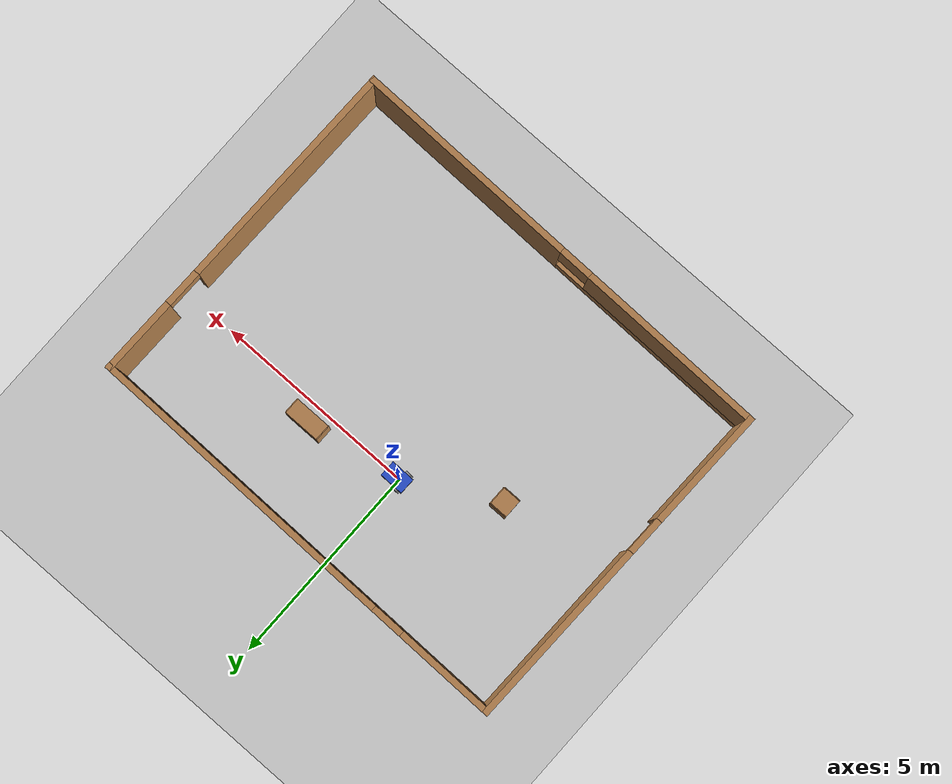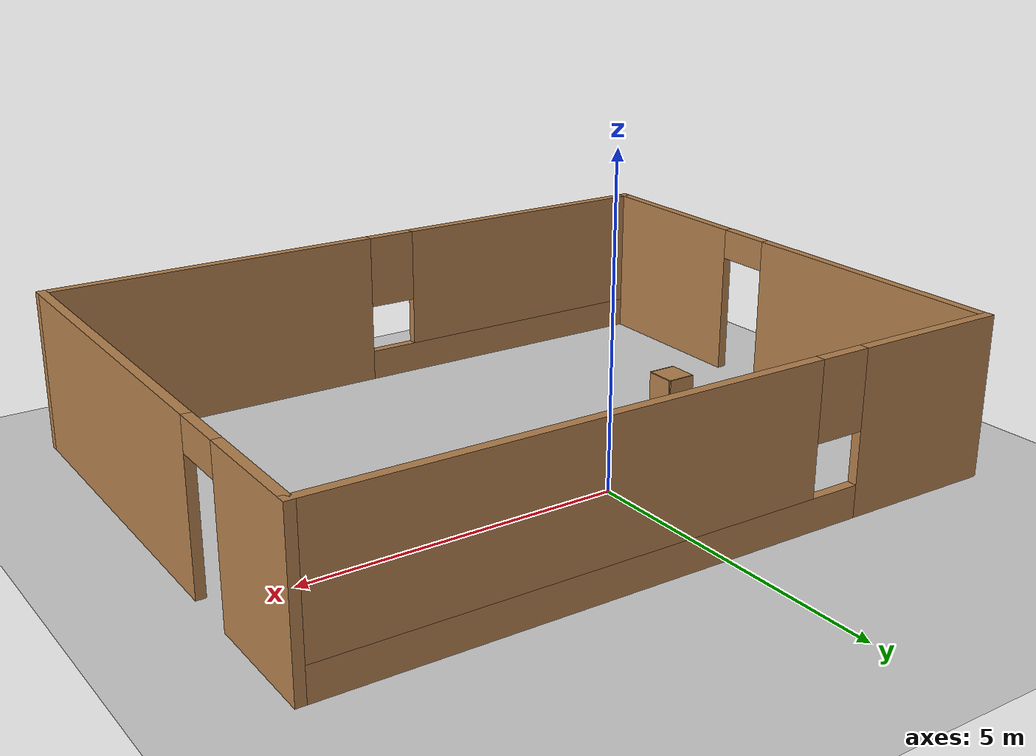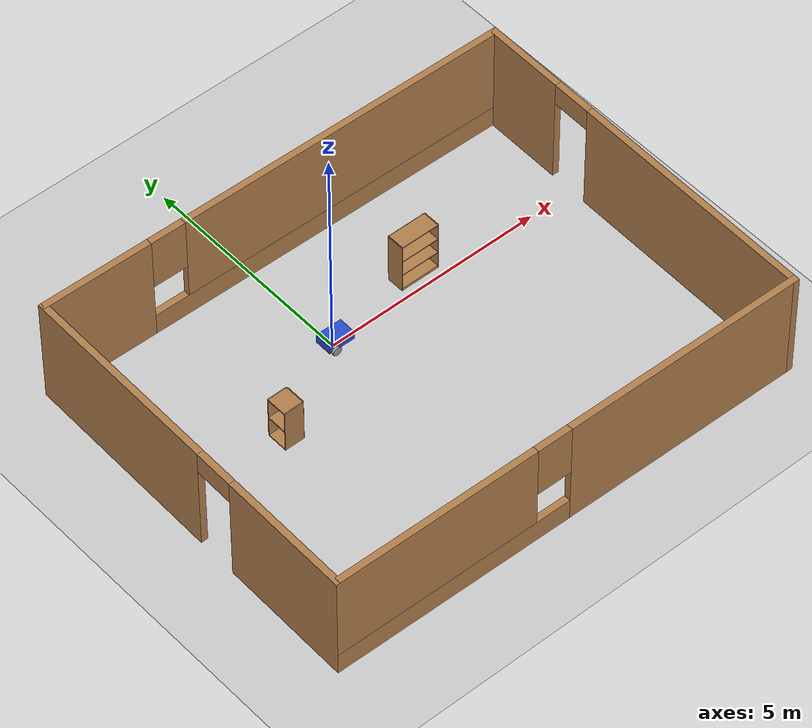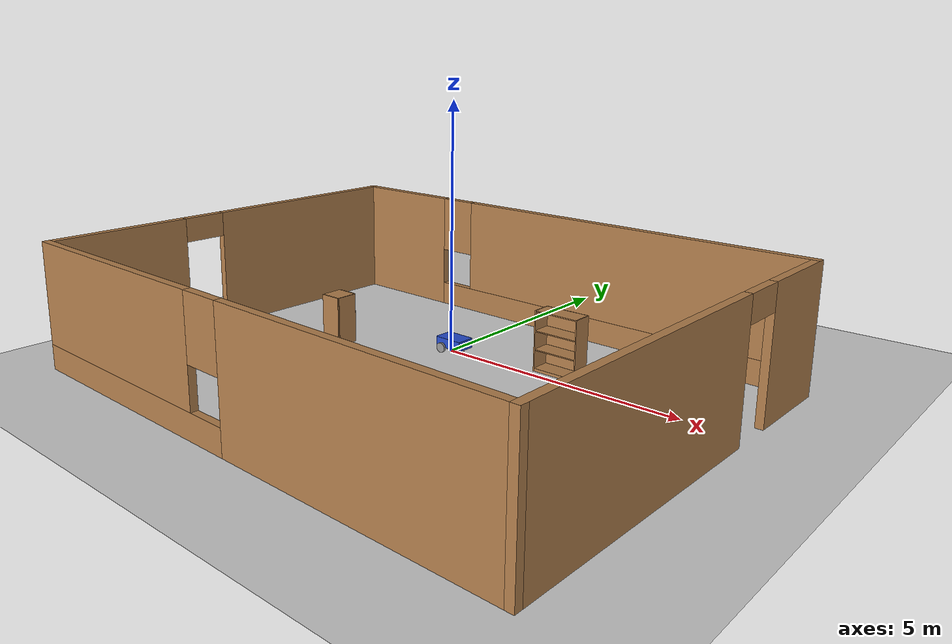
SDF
<sdf version="1.7">
 <world name="default">
  <light name="sun" type="directional">
   <pose>0 0 10 0 -0 0</pose>
   <diffuse>0.8 0.8 0.8 1</diffuse>
   <specular>0.2 0.2 0.2 1</specular>
   <attenuation>
    <range>1000</range>
    <constant>0.9</constant>
    <linear>0.01</linear>
    <quadratic>0.001</quadratic>
   </attenuation>
   <direction>-0.5 0.1 -0.9</direction>
   <spot><inner_angle>0</inner_angle><outer_angle>0</outer_angle><falloff>0</falloff></spot>
  </light>
  <model name="ground_plane">
   <static>1</static>
   <link name="link">
    <collision name="collision">
     <geometry><plane><normal>0 0 1</normal><size>100 100</size></plane></geometry>
     <surface>
      <contact><collide_bitmask>65535</collide_bitmask></contact>
      <friction><ode><mu>100</mu><mu2>50</mu2></ode></friction>
     </surface>
    </collision>
    <visual name="visual">
     <cast_shadows>0</cast_shadows>
     <geometry><plane><normal>0 0 1</normal><size>100 100</size></plane></geometry>
     <material>
      <script><uri>file://media/materials/scripts/gazebo.material</uri><name>Gazebo/Grey</name></script>
     </material>
    </visual>
   </link>
  </model>
  <gravity>0 0 -9.8</gravity>
  <magnetic_field>6e-06 2.3e-05 -4.2e-05</magnetic_field>
  <atmosphere type="adiabatic"/>
  <physics type="ode">
   <max_step_size>0.001</max_step_size>
   <real_time_factor>1</real_time_factor>
   <real_time_update_rate>1000</real_time_update_rate>
  </physics>
  <scene><ambient>0.4 0.4 0.4 1</ambient><background>0.7 0.7 0.7 1</background><shadows>1</shadows></scene>
  <audio><device>default</device></audio>
  <spherical_coordinates>
   <surface_model>EARTH_WGS84</surface_model>
   <latitude_deg>0</latitude_deg>
   <longitude_deg>0</longitude_deg>
   <elevation>0</elevation>
   <heading_deg>0</heading_deg>
  </spherical_coordinates>
  <model name="mera_robot">
   <link name="base_footprint">
    <inertial>
     <pose>0.018182 0 0.186364 0 -0 0</pose>
     <mass>5.5</mass>
     <inertia>
      <ixx>0.678894</ixx>
      <ixy>0</ixy>
      <ixz>0.0136364</ixz>
      <iyy>0.897076</iyy>
      <iyz>0</iyz>
      <izz>0.353515</izz>
     </inertia>
    </inertial>
    <collision name="base_footprint_fixed_joint_lump__base_link_collision">
     <pose>0 0 0.2 0 -0 0</pose>
     <geometry><box><size>0.6 0.4 0.2</size></box></geometry>
    </collision>
    <collision name="base_footprint_fixed_joint_lump__castor_wheel_link_collision_1">
     <pose>0.2 0 0.05 0 -0 0</pose>
     <geometry><sphere><radius>0.05</radius></sphere></geometry>
     <surface><friction><ode><mu>0.1</mu><mu2>0.1</mu2></ode></friction></surface>
    </collision>
    <visual name="base_footprint_fixed_joint_lump__base_link_visual">
     <pose>0 0 0.2 0 -0 0</pose>
     <geometry><box><size>0.6 0.4 0.2</size></box></geometry>
     <material>
      <script><name>Gazebo/Blue</name><uri>file://media/materials/scripts/gazebo.material</uri></script>
     </material>
    </visual>
    <visual name="base_footprint_fixed_joint_lump__castor_wheel_link_visual_1">
     <pose>0.2 0 0.05 0 -0 0</pose>
     <geometry><sphere><radius>0.05</radius></sphere></geometry>
     <material>
      <script><name>Gazebo/Grey</name><uri>file://media/materials/scripts/gazebo.material</uri></script>
     </material>
    </visual>
   </link>
   <joint name="base_left_wheel_joint" type="revolute">
    <pose relative_to="base_footprint">-0.15 0.225 0.1 1.5708 -0 0</pose>
    <parent>base_footprint</parent>
    <child>left_wheel_link</child>
    <axis>
     <xyz>0 0 -1</xyz>
     <limit><lower>-1e+16</lower><upper>1e+16</upper></limit>
     <dynamics><spring_reference>0</spring_reference><spring_stiffness>0</spring_stiffness></dynamics>
    </axis>
   </joint>
   <link name="left_wheel_link">
    <pose relative_to="base_left_wheel_joint">0 0 0 0 -0 0</pose>
    <inertial>
     <mass>1</mass>
     <inertia><ixx>0.0108333</ixx><ixy>0</ixy><ixz>0</ixz><iyy>0.0108333</iyy><iyz>0</iyz><izz>0.02</izz></inertia>
    </inertial>
    <collision name="left_wheel_link_collision">
     <geometry><cylinder><length>0.05</length><radius>0.1</radius></cylinder></geometry>
    </collision>
    <visual name="left_wheel_link_visual">
     <geometry><cylinder><length>0.05</length><radius>0.1</radius></cylinder></geometry>
     <material>
      <script><name>Gazebo/Grey</name><uri>file://media/materials/scripts/gazebo.material</uri></script>
     </material>
    </visual>
   </link>
   <joint name="base_right_wheel_joint" type="revolute">
    <pose relative_to="base_footprint">-0.15 -0.225 0.1 1.5708 -0 0</pose>
    <parent>base_footprint</parent>
    <child>right_wheel_link</child>
    <axis>
     <xyz>0 0 -1</xyz>
     <limit><lower>-1e+16</lower><upper>1e+16</upper></limit>
     <dynamics><spring_reference>0</spring_reference><spring_stiffness>0</spring_stiffness></dynamics>
    </axis>
   </joint>
   <link name="right_wheel_link">
    <pose relative_to="base_right_wheel_joint">0 0 0 0 -0 0</pose>
    <inertial>
     <mass>1</mass>
     <inertia><ixx>0.0108333</ixx><ixy>0</ixy><ixz>0</ixz><iyy>0.0108333</iyy><iyz>0</iyz><izz>0.02</izz></inertia>
    </inertial>
    <collision name="right_wheel_link_collision">
     <geometry><cylinder><length>0.05</length><radius>0.1</radius></cylinder></geometry>
    </collision>
    <visual name="right_wheel_link_visual">
     <geometry><cylinder><length>0.05</length><radius>0.1</radius></cylinder></geometry>
     <material>
      <script><name>Gazebo/Grey</name><uri>file://media/materials/scripts/gazebo.material</uri></script>
     </material>
    </visual>
   </link>
   <static>0</static>
   <plugin name="diff_drive_controller" filename="libgazebo_ros_diff_drive.so">
    <update_rate>50</update_rate>
    <left_joint>base_left_wheel_joint</left_joint>
    <right_joint>base_right_wheel_joint</right_joint>
    <wheel_separation>0.45</wheel_separation>
    <wheel_diameter>0.2</wheel_diameter>
    <max_wheel_torque>20</max_wheel_torque>
    <max_wheel_acceleration>1.0</max_wheel_acceleration>
    <command_topic>cmd_vel</command_topic>
    <publish_odom>1</publish_odom>
    <publish_odom_tf>1</publish_odom_tf>
    <publish_wheel_tf>1</publish_wheel_tf>
    <odometry_topic>odom</odometry_topic>
    <odometry_frame>odom</odometry_frame>
    <robot_base_frame>base_footprint</robot_base_frame>
   </plugin>
   <pose>0.068819 0.00412 0 0 0 -0.014184</pose>
  </model>
  <model name="test">
   <pose>0.64789 -1.73679 0 0 -0 1.55654</pose>
   <link name="Wall_12">
    <pose>4.175 -0 0 0 -0 -1.5708</pose>
    <visual name="Wall_12_Visual_0">
     <pose>-4.24636 0 1.25 0 -0 0</pose>
     <geometry><box><size>2.50728 0.15 2.5</size></box></geometry>
     <material>
      <script><uri>file://media/materials/scripts/gazebo.material</uri><name>Gazebo/Wood</name></script>
      <ambient>1 1 1 1</ambient>
     </material>
     <meta><layer>0</layer></meta>
    </visual>
    <collision name="Wall_12_Collision_0">
     <geometry><box><size>2.50728 0.15 2.5</size></box></geometry>
     <pose>-4.24636 0 1.25 0 -0 0</pose>
    </collision>
    <visual name="Wall_12_Visual_1">
     <pose>1.25364 0 0.25 0 -0 0</pose>
     <geometry><box><size>8.49272 0.15 0.5</size></box></geometry>
     <material>
      <script><uri>file://media/materials/scripts/gazebo.material</uri><name>Gazebo/Wood</name></script>
      <ambient>1 1 1 1</ambient>
     </material>
     <meta><layer>0</layer></meta>
    </visual>
    <collision name="Wall_12_Collision_1">
     <geometry><box><size>8.49272 0.15 0.5</size></box></geometry>
     <pose>1.25364 0 0.25 0 -0 0</pose>
    </collision>
    <visual name="Wall_12_Visual_2">
     <pose>1.65364 0 1.5 0 -0 0</pose>
     <geometry><box><size>7.69272 0.15 2</size></box></geometry>
     <material>
      <script><uri>file://media/materials/scripts/gazebo.material</uri><name>Gazebo/Wood</name></script>
      <ambient>1 1 1 1</ambient>
     </material>
     <meta><layer>0</layer></meta>
    </visual>
    <collision name="Wall_12_Collision_2">
     <geometry><box><size>7.69272 0.15 2</size></box></geometry>
     <pose>1.65364 0 1.5 0 -0 0</pose>
    </collision>
    <visual name="Wall_12_Visual_3">
     <pose>-2.59272 0 1.9 0 -0 0</pose>
     <geometry><box><size>0.8 0.15 1.2</size></box></geometry>
     <material>
      <script><uri>file://media/materials/scripts/gazebo.material</uri><name>Gazebo/Wood</name></script>
      <ambient>1 1 1 1</ambient>
     </material>
     <meta><layer>0</layer></meta>
    </visual>
    <collision name="Wall_12_Collision_3">
     <geometry><box><size>0.8 0.15 1.2</size></box></geometry>
     <pose>-2.59272 0 1.9 0 -0 0</pose>
    </collision>
   </link>
   <link name="Wall_13">
    <pose>-0 -5.425 0 0 -0 3.14159</pose>
    <visual name="Wall_13_Visual_0">
     <pose>-3.29424 0 1.25 0 -0 0</pose>
     <geometry><box><size>1.91153 0.15 2.5</size></box></geometry>
     <material>
      <script><uri>file://media/materials/scripts/gazebo.material</uri><name>Gazebo/Wood</name></script>
      <ambient>1 1 1 1</ambient>
     </material>
     <meta><layer>0</layer></meta>
    </visual>
    <collision name="Wall_13_Collision_0">
     <geometry><box><size>1.91153 0.15 2.5</size></box></geometry>
     <pose>-3.29424 0 1.25 0 -0 0</pose>
    </collision>
    <visual name="Wall_13_Visual_1">
     <pose>1.40576 0 1.25 0 -0 0</pose>
     <geometry><box><size>5.68847 0.15 2.5</size></box></geometry>
     <material>
      <script><uri>file://media/materials/scripts/gazebo.material</uri><name>Gazebo/Wood</name></script>
      <ambient>1 1 1 1</ambient>
     </material>
     <meta><layer>0</layer></meta>
    </visual>
    <collision name="Wall_13_Collision_1">
     <geometry><box><size>5.68847 0.15 2.5</size></box></geometry>
     <pose>1.40576 0 1.25 0 -0 0</pose>
    </collision>
    <visual name="Wall_13_Visual_2">
     <pose>-1.88847 0 2.25 0 -0 0</pose>
     <geometry><box><size>0.9 0.15 0.5</size></box></geometry>
     <material>
      <script><uri>file://media/materials/scripts/gazebo.material</uri><name>Gazebo/Wood</name></script>
      <ambient>1 1 1 1</ambient>
     </material>
     <meta><layer>0</layer></meta>
    </visual>
    <collision name="Wall_13_Collision_2">
     <geometry><box><size>0.9 0.15 0.5</size></box></geometry>
     <pose>-1.88847 0 2.25 0 -0 0</pose>
    </collision>
   </link>
   <link name="Wall_7">
    <pose>-4.175 -0 0 0 -0 1.5708</pose>
    <visual name="Wall_7_Visual_0">
     <pose>-2.73095 0 1.25 0 -0 0</pose>
     <geometry><box><size>5.5381 0.15 2.5</size></box></geometry>
     <material>
      <script><uri>file://media/materials/scripts/gazebo.material</uri><name>Gazebo/Wood</name></script>
      <ambient>1 1 1 1</ambient>
     </material>
     <meta><layer>0</layer></meta>
    </visual>
    <collision name="Wall_7_Collision_0">
     <geometry><box><size>5.5381 0.15 2.5</size></box></geometry>
     <pose>-2.73095 0 1.25 0 -0 0</pose>
    </collision>
    <visual name="Wall_7_Visual_1">
     <pose>2.76905 0 0.25 0 -0 0</pose>
     <geometry><box><size>5.4619 0.15 0.5</size></box></geometry>
     <material>
      <script><uri>file://media/materials/scripts/gazebo.material</uri><name>Gazebo/Wood</name></script>
      <ambient>1 1 1 1</ambient>
     </material>
     <meta><layer>0</layer></meta>
    </visual>
    <collision name="Wall_7_Collision_1">
     <geometry><box><size>5.4619 0.15 0.5</size></box></geometry>
     <pose>2.76905 0 0.25 0 -0 0</pose>
    </collision>
    <visual name="Wall_7_Visual_2">
     <pose>3.16905 0 1.5 0 -0 0</pose>
     <geometry><box><size>4.6619 0.15 2</size></box></geometry>
     <material>
      <script><uri>file://media/materials/scripts/gazebo.material</uri><name>Gazebo/Wood</name></script>
      <ambient>1 1 1 1</ambient>
     </material>
     <meta><layer>0</layer></meta>
    </visual>
    <collision name="Wall_7_Collision_2">
     <geometry><box><size>4.6619 0.15 2</size></box></geometry>
     <pose>3.16905 0 1.5 0 -0 0</pose>
    </collision>
    <visual name="Wall_7_Visual_3">
     <pose>0.438105 0 1.9 0 -0 0</pose>
     <geometry><box><size>0.8 0.15 1.2</size></box></geometry>
     <material>
      <script><uri>file://media/materials/scripts/gazebo.material</uri><name>Gazebo/Wood</name></script>
      <ambient>1 1 1 1</ambient>
     </material>
     <meta><layer>0</layer></meta>
    </visual>
    <collision name="Wall_7_Collision_3">
     <geometry><box><size>0.8 0.15 1.2</size></box></geometry>
     <pose>0.438105 0 1.9 0 -0 0</pose>
    </collision>
   </link>
   <link name="Wall_9">
    <pose>-0 5.425 0 0 -0 0</pose>
    <visual name="Wall_9_Visual_0">
     <pose>-2.76237 0 1.25 0 -0 0</pose>
     <geometry><box><size>2.97525 0.15 2.5</size></box></geometry>
     <material>
      <script><uri>file://media/materials/scripts/gazebo.material</uri><name>Gazebo/Wood</name></script>
      <ambient>1 1 1 1</ambient>
     </material>
     <meta><layer>0</layer></meta>
    </visual>
    <collision name="Wall_9_Collision_0">
     <geometry><box><size>2.97525 0.15 2.5</size></box></geometry>
     <pose>-2.76237 0 1.25 0 -0 0</pose>
    </collision>
    <visual name="Wall_9_Visual_1">
     <pose>1.93763 0 1.25 0 -0 0</pose>
     <geometry><box><size>4.62475 0.15 2.5</size></box></geometry>
     <material>
      <script><uri>file://media/materials/scripts/gazebo.material</uri><name>Gazebo/Wood</name></script>
      <ambient>1 1 1 1</ambient>
     </material>
     <meta><layer>0</layer></meta>
    </visual>
    <collision name="Wall_9_Collision_1">
     <geometry><box><size>4.62475 0.15 2.5</size></box></geometry>
     <pose>1.93763 0 1.25 0 -0 0</pose>
    </collision>
    <visual name="Wall_9_Visual_2">
     <pose>-0.824749 0 2.25 0 -0 0</pose>
     <geometry><box><size>0.9 0.15 0.5</size></box></geometry>
     <material>
      <script><uri>file://media/materials/scripts/gazebo.material</uri><name>Gazebo/Wood</name></script>
      <ambient>1 1 1 1</ambient>
     </material>
     <meta><layer>0</layer></meta>
    </visual>
    <collision name="Wall_9_Collision_2">
     <geometry><box><size>0.9 0.15 0.5</size></box></geometry>
     <pose>-0.824749 0 2.25 0 -0 0</pose>
    </collision>
   </link>
   <static>1</static>
  </model>
  <model name="bookshelf">
   <static>1</static>
   <link name="link">
    <inertial><mass>1</mass></inertial>
    <collision name="back">
     <pose>0 0.005 0.6 0 -0 0</pose>
     <geometry><box><size>0.9 0.01 1.2</size></box></geometry>
    </collision>
    <visual name="visual1">
     <pose>0 0.005 0.6 0 -0 0</pose>
     <geometry><box><size>0.9 0.01 1.2</size></box></geometry>
     <material>
      <script><uri>file://media/materials/scripts/gazebo.material</uri><name>Gazebo/Wood</name></script>
     </material>
    </visual>
    <collision name="left_side">
     <pose>0.45 -0.195 0.6 0 -0 0</pose>
     <geometry><box><size>0.02 0.4 1.2</size></box></geometry>
    </collision>
    <visual name="visual2">
     <pose>0.45 -0.195 0.6 0 -0 0</pose>
     <geometry><box><size>0.02 0.4 1.2</size></box></geometry>
     <material>
      <script><uri>file://media/materials/scripts/gazebo.material</uri><name>Gazebo/Wood</name></script>
     </material>
    </visual>
    <collision name="right_side">
     <pose>-0.45 -0.195 0.6 0 -0 0</pose>
     <geometry><box><size>0.02 0.4 1.2</size></box></geometry>
    </collision>
    <visual name="visual3">
     <pose>-0.45 -0.195 0.6 0 -0 0</pose>
     <geometry><box><size>0.02 0.4 1.2</size></box></geometry>
     <material>
      <script><uri>file://media/materials/scripts/gazebo.material</uri><name>Gazebo/Wood</name></script>
     </material>
    </visual>
    <collision name="bottom">
     <pose>0 -0.195 0.03 0 -0 0</pose>
     <geometry><box><size>0.88 0.4 0.06</size></box></geometry>
    </collision>
    <visual name="visual4">
     <pose>0 -0.195 0.03 0 -0 0</pose>
     <geometry><box><size>0.88 0.4 0.06</size></box></geometry>
     <material>
      <script><uri>file://media/materials/scripts/gazebo.material</uri><name>Gazebo/Wood</name></script>
     </material>
    </visual>
    <collision name="top">
     <pose>0 -0.195 1.19 0 -0 0</pose>
     <geometry><box><size>0.88 0.4 0.02</size></box></geometry>
    </collision>
    <visual name="visual5">
     <pose>0 -0.195 1.19 0 -0 0</pose>
     <geometry><box><size>0.88 0.4 0.02</size></box></geometry>
     <material>
      <script><uri>file://media/materials/scripts/gazebo.material</uri><name>Gazebo/Wood</name></script>
     </material>
    </visual>
    <collision name="low_shelf">
     <pose>0 -0.195 0.43 0 -0 0</pose>
     <geometry><box><size>0.88 0.4 0.02</size></box></geometry>
    </collision>
    <visual name="visual6">
     <pose>0 -0.195 0.43 0 -0 0</pose>
     <geometry><box><size>0.88 0.4 0.02</size></box></geometry>
     <material>
      <script><uri>file://media/materials/scripts/gazebo.material</uri><name>Gazebo/Wood</name></script>
     </material>
    </visual>
    <collision name="high_shelf">
     <pose>0 -0.195 0.8 0 -0 0</pose>
     <geometry><box><size>0.88 0.4 0.02</size></box></geometry>
    </collision>
    <visual name="visual7">
     <pose>0 -0.195 0.8 0 -0 0</pose>
     <geometry><box><size>0.88 0.4 0.02</size></box></geometry>
     <material>
      <script><uri>file://media/materials/scripts/gazebo.material</uri><name>Gazebo/Wood</name></script>
     </material>
    </visual>
   </link>
   <pose>2.3397 0.575033 0 0 -0 0</pose>
  </model>
  <model name="cabinet">
   <static>1</static>
   <link name="cabinet_bottom_plate">
    <inertial>
     <pose>0 0 -1 0 -0 0</pose>
     <inertia><ixx>2.05</ixx><ixy>0</ixy><ixz>0</ixz><iyy>2.05</iyy><iyz>0</iyz><izz>2.05</izz></inertia>
     <mass>25</mass>
    </inertial>
    <collision name="cabinet_bottom_plate_geom">
     <pose>0 0 0.01 0 -0 0</pose>
     <geometry><box><size>0.45 0.45 0.02</size></box></geometry>
    </collision>
    <visual name="cabinet_bottom_plate_geom_visual">
     <pose>0 0 0.01 0 -0 0</pose>
     <geometry><box><size>0.45 0.45 0.02</size></box></geometry>
     <material>
      <script><uri>file://media/materials/scripts/gazebo.material</uri><name>Gazebo/Wood</name></script>
     </material>
    </visual>
    <collision name="cabinet_bottom_plate_geom_cabinet_back_plate">
     <pose>0.235 0 0.51 0 -0 0</pose>
     <geometry><box><size>0.02 0.45 1.02</size></box></geometry>
    </collision>
    <visual name="cabinet_bottom_plate_geom_cabinet_back_plate_visual">
     <pose>0.235 0 0.51 0 -0 0</pose>
     <geometry><box><size>0.02 0.45 1.02</size></box></geometry>
     <material>
      <script><uri>file://media/materials/scripts/gazebo.material</uri><name>Gazebo/Wood</name></script>
     </material>
    </visual>
    <collision name="cabinet_bottom_plate_geom_cabinet_left_plate">
     <pose>0 0.235 0.51 0 -0 0</pose>
     <geometry><box><size>0.45 0.02 1.02</size></box></geometry>
    </collision>
    <visual name="cabinet_bottom_plate_geom_cabinet_left_plate_visual">
     <pose>0 0.235 0.51 0 -0 0</pose>
     <geometry><box><size>0.45 0.02 1.02</size></box></geometry>
     <material>
      <script><uri>file://media/materials/scripts/gazebo.material</uri><name>Gazebo/Wood</name></script>
     </material>
    </visual>
    <collision name="cabinet_bottom_plate_geom_cabinet_middle_plate">
     <pose>0 0 0.51 0 -0 0</pose>
     <geometry><box><size>0.45 0.45 0.02</size></box></geometry>
    </collision>
    <visual name="cabinet_bottom_plate_geom_cabinet_middle_plate_visual">
     <pose>0 0 0.51 0 -0 0</pose>
     <geometry><box><size>0.45 0.45 0.02</size></box></geometry>
     <material>
      <script><uri>file://media/materials/scripts/gazebo.material</uri><name>Gazebo/Wood</name></script>
     </material>
    </visual>
    <collision name="cabinet_bottom_plate_geom_cabinet_right_plate">
     <pose>0 -0.235 0.51 0 -0 0</pose>
     <geometry><box><size>0.45 0.02 1.02</size></box></geometry>
    </collision>
    <visual name="cabinet_bottom_plate_geom_cabinet_right_plate_visual">
     <pose>0 -0.235 0.51 0 -0 0</pose>
     <geometry><box><size>0.45 0.02 1.02</size></box></geometry>
     <material>
      <script><uri>file://media/materials/scripts/gazebo.material</uri><name>Gazebo/Wood</name></script>
     </material>
    </visual>
    <collision name="cabinet_bottom_plate_geom_cabinet_top_plate">
     <pose>0 0 1.01 0 -0 0</pose>
     <geometry><box><size>0.45 0.45 0.02</size></box></geometry>
    </collision>
    <visual name="cabinet_bottom_plate_geom_cabinet_top_plate_visual">
     <pose>0 0 1.01 0 -0 0</pose>
     <geometry><box><size>0.45 0.45 0.02</size></box></geometry>
     <material>
      <script><uri>file://media/materials/scripts/gazebo.material</uri><name>Gazebo/Wood</name></script>
     </material>
    </visual>
   </link>
   <pose>-2.08411 -1.12862 0 0 -0 0</pose>
  </model>
 </world>
</sdf>
